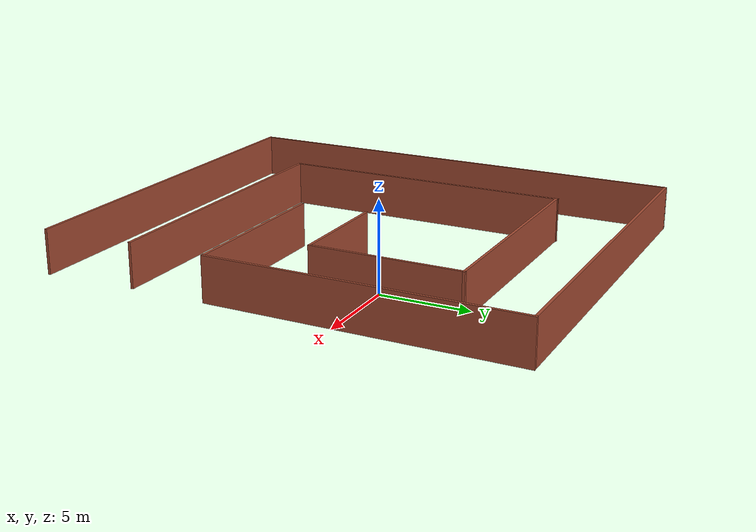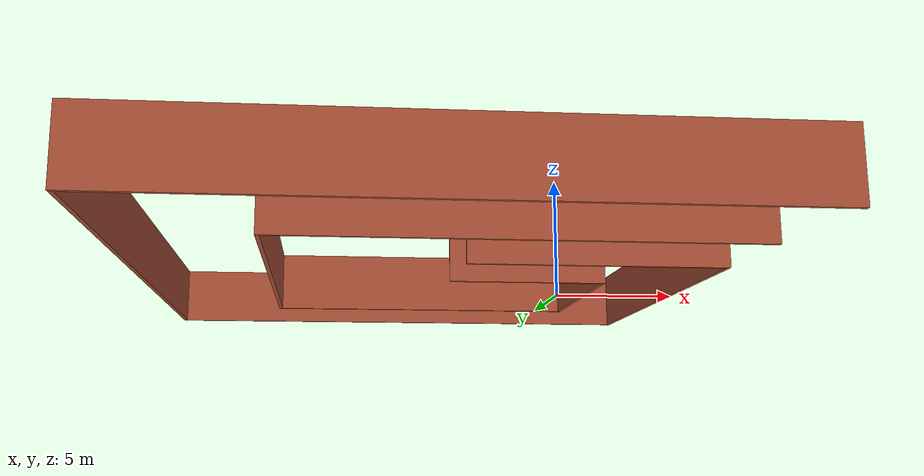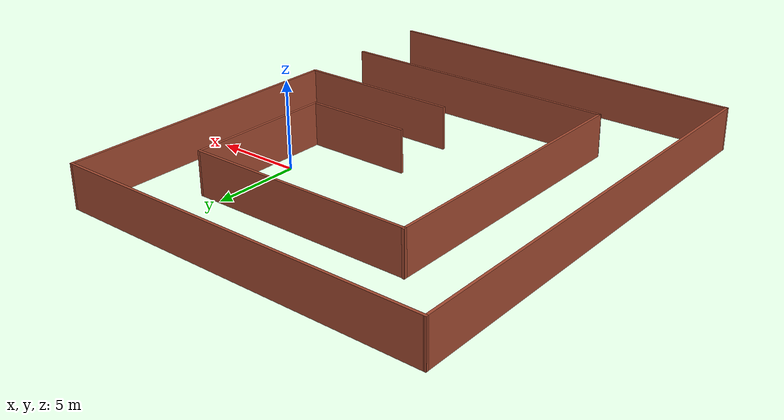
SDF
<?xml version='1.0'?>
<sdf version='1.7'>
  <model name='square'>
    <pose>-5.90857 -3.36986 0 0 -0 0</pose>
    <link name='Wall_10'>
      <collision name='Wall_10_Collision'>
        <geometry>
          <box>
            <size>13.3051 0.15 2.5</size>
          </box>
        </geometry>
        <pose>0 0 1.25 0 -0 0</pose>
      </collision>
      <visual name='Wall_10_Visual'>
        <pose>0 0 1.25 0 -0 0</pose>
        <geometry>
          <box>
            <size>13.3051 0.15 2.5</size>
          </box>
        </geometry>
        <material>
          <script>
            <uri>file://media/materials/scripts/gazebo.material</uri>
            <name>Gazebo/Bricks</name>
          </script>
          <ambient>1 1 1 1</ambient>
        </material>
        <meta>
          <layer>0</layer>
        </meta>
      </visual>
      <pose>0.51679 8.44126 0 0 -0 3.14159</pose>
    </link>
    <link name='Wall_11'>
      <collision name='Wall_11_Collision'>
        <geometry>
          <box>
            <size>16.7539 0.15 2.5</size>
          </box>
        </geometry>
        <pose>0 0 1.25 0 -0 0</pose>
      </collision>
      <visual name='Wall_11_Visual'>
        <pose>0 0 1.25 0 -0 0</pose>
        <geometry>
          <box>
            <size>16.7539 0.15 2.5</size>
          </box>
        </geometry>
        <material>
          <script>
            <uri>file://media/materials/scripts/gazebo.material</uri>
            <name>Gazebo/Bricks</name>
          </script>
          <ambient>1 1 1 1</ambient>
        </material>
        <meta>
          <layer>0</layer>
        </meta>
      </visual>
      <pose>-6.0607 0.179768 0 0 -0 -1.5708</pose>
    </link>
    <link name='Wall_12'>
      <collision name='Wall_12_Collision'>
        <geometry>
          <box>
            <size>17 0.15 2.5</size>
          </box>
        </geometry>
        <pose>0 0 1.25 0 -0 0</pose>
      </collision>
      <visual name='Wall_12_Visual'>
        <pose>0 0 1.25 0 -0 0</pose>
        <geometry>
          <box>
            <size>17 0.15 2.5</size>
          </box>
        </geometry>
        <material>
          <script>
            <uri>file://media/materials/scripts/gazebo.material</uri>
            <name>Gazebo/Bricks</name>
          </script>
          <ambient>1 1 1 1</ambient>
        </material>
        <meta>
          <layer>0</layer>
        </meta>
      </visual>
      <pose>2.36429 -8.16263 0 0 -0 0</pose>
    </link>
    <link name='Wall_15'>
      <collision name='Wall_15_Collision'>
        <geometry>
          <box>
            <size>9.75 0.15 2.5</size>
          </box>
        </geometry>
        <pose>0 0 1.25 0 -0 0</pose>
      </collision>
      <visual name='Wall_15_Visual'>
        <pose>0 0 1.25 0 -0 0</pose>
        <geometry>
          <box>
            <size>9.75 0.15 2.5</size>
          </box>
        </geometry>
        <material>
          <script>
            <uri>file://media/materials/scripts/gazebo.material</uri>
            <name>Gazebo/Bricks</name>
          </script>
          <ambient>1 1 1 1</ambient>
        </material>
        <meta>
          <layer>0</layer>
        </meta>
      </visual>
      <pose>5.97887 -3.785 0 0 -0 0</pose>
    </link>
    <link name='Wall_16'>
      <collision name='Wall_16_Collision'>
        <geometry>
          <box>
            <size>17.25 0.15 2.5</size>
          </box>
        </geometry>
        <pose>0 0 1.25 0 -0 0</pose>
      </collision>
      <visual name='Wall_16_Visual'>
        <pose>0 0 1.25 0 -0 0</pose>
        <geometry>
          <box>
            <size>17.25 0.15 2.5</size>
          </box>
        </geometry>
        <material>
          <script>
            <uri>file://media/materials/scripts/gazebo.material</uri>
            <name>Gazebo/Bricks</name>
          </script>
          <ambient>1 1 1 1</ambient>
        </material>
        <meta>
          <layer>0</layer>
        </meta>
      </visual>
      <pose>10.7789 4.765 0 0 -0 1.5708</pose>
    </link>
    <link name='Wall_17'>
      <collision name='Wall_17_Collision'>
        <geometry>
          <box>
            <size>22 0.15 2.5</size>
          </box>
        </geometry>
        <pose>0 0 1.25 0 -0 0</pose>
      </collision>
      <visual name='Wall_17_Visual'>
        <pose>0 0 1.25 0 -0 0</pose>
        <geometry>
          <box>
            <size>22 0.15 2.5</size>
          </box>
        </geometry>
        <material>
          <script>
            <uri>file://media/materials/scripts/gazebo.material</uri>
            <name>Gazebo/Bricks</name>
          </script>
          <ambient>1 1 1 1</ambient>
        </material>
        <meta>
          <layer>0</layer>
        </meta>
      </visual>
      <pose>-0.146132 13.315 0 0 -0 3.14159</pose>
    </link>
    <link name='Wall_18'>
      <collision name='Wall_18_Collision'>
        <geometry>
          <box>
            <size>26.6988 0.15 2.5</size>
          </box>
        </geometry>
        <pose>0 0 1.25 0 -0 0</pose>
      </collision>
      <visual name='Wall_18_Visual'>
        <pose>0 0 1.25 0 -0 0</pose>
        <geometry>
          <box>
            <size>26.6988 0.15 2.5</size>
          </box>
        </geometry>
        <material>
          <script>
            <uri>file://media/materials/scripts/gazebo.material</uri>
            <name>Gazebo/Bricks</name>
          </script>
          <ambient>1 1 1 1</ambient>
        </material>
        <meta>
          <layer>0</layer>
        </meta>
      </visual>
      <pose>-11.0499 0.040626 0 0 -0 -1.5692</pose>
    </link>
    <link name='Wall_19'>
      <collision name='Wall_19_Collision'>
        <geometry>
          <box>
            <size>22.25 0.15 2.5</size>
          </box>
        </geometry>
        <pose>0 0 1.25 0 -0 0</pose>
      </collision>
      <visual name='Wall_19_Visual'>
        <pose>0 0 1.25 0 -0 0</pose>
        <geometry>
          <box>
            <size>22.25 0.15 2.5</size>
          </box>
        </geometry>
        <material>
          <script>
            <uri>file://media/materials/scripts/gazebo.material</uri>
            <name>Gazebo/Bricks</name>
          </script>
          <ambient>1 1 1 1</ambient>
        </material>
        <meta>
          <layer>0</layer>
        </meta>
      </visual>
      <pose>0.021251 -13.3151 0 0 -0 0</pose>
    </link>
    <link name='Wall_8'>
      <collision name='Wall_8_Collision'>
        <geometry>
          <box>
            <size>6.25 0.15 2.5</size>
          </box>
        </geometry>
        <pose>0 0 1.25 0 -0 0</pose>
      </collision>
      <visual name='Wall_8_Visual'>
        <pose>0 0 1.25 0 -0 0</pose>
        <geometry>
          <box>
            <size>6.25 0.15 2.5</size>
          </box>
        </geometry>
        <material>
          <script>
            <uri>file://media/materials/scripts/gazebo.material</uri>
            <name>Gazebo/Bricks</name>
          </script>
          <ambient>1 1 1 1</ambient>
        </material>
        <meta>
          <layer>0</layer>
        </meta>
      </visual>
      <pose>4.04428 0.091256 0 0 -0 0</pose>
    </link>
    <link name='Wall_9'>
      <collision name='Wall_9_Collision'>
        <geometry>
          <box>
            <size>8.5 0.15 2.5</size>
          </box>
        </geometry>
        <pose>0 0 1.25 0 -0 0</pose>
      </collision>
      <visual name='Wall_9_Visual'>
        <pose>0 0 1.25 0 -0 0</pose>
        <geometry>
          <box>
            <size>8.5 0.15 2.5</size>
          </box>
        </geometry>
        <material>
          <script>
            <uri>file://media/materials/scripts/gazebo.material</uri>
            <name>Gazebo/Bricks</name>
          </script>
          <ambient>1 1 1 1</ambient>
        </material>
        <meta>
          <layer>0</layer>
        </meta>
      </visual>
      <pose>7.09428 4.26626 0 0 -0 1.5708</pose>
    </link>
    <static>1</static>
  </model>
</sdf>
